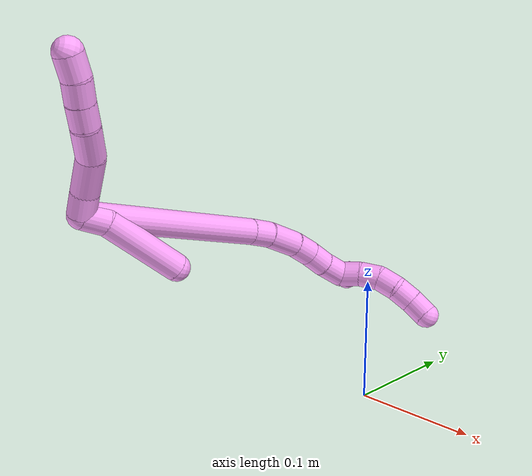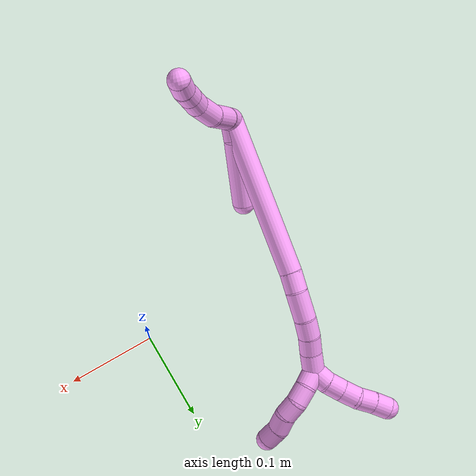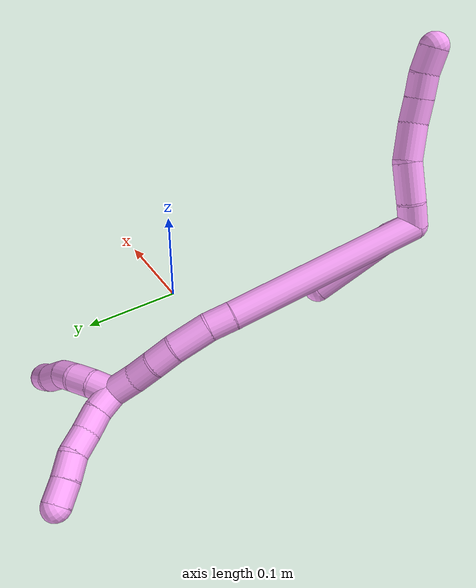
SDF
<sdf version="1.7">
 <world name="default">
  <model name="4">
   <static>0</static>
   <link name="4">
    <collision name="collision-cylinder-e_1_2_8">
     <pose>0.009098 0.004883 0.003103 -1.00473 1.00435 -0.585998</pose>
     <geometry><cylinder><radius>0.0125</radius><length>0.021563</length></cylinder></geometry>
     <surface>
      <friction><ode><mu>1.16</mu><mu2>1.16</mu2><slip1>0</slip1><slip2>0</slip2></ode></friction>
      <contact><ode><kp>1e+06</kp><kd>1</kd><max_vel>0</max_vel><min_depth>0.001</min_depth></ode></contact>
     </surface>
    </collision>
    <visual name="visual-cylinder-e_1_2_8">
     <pose>0.009098 0.004883 0.003103 -1.00473 1.00435 -0.585998</pose>
     <geometry><cylinder><radius>0.0125</radius><length>0.021563</length></cylinder></geometry>
     <material><ambient>1 0.65098 0.996078 1</ambient></material>
    </visual>
    <collision name="collision-cylinder-e_2_8_9">
     <pose>0.033913 0.015163 0.011852 -0.762802 1.10962 -0.48721</pose>
     <geometry><cylinder><radius>0.0125</radius><length>0.035103</length></cylinder></geometry>
     <surface>
      <friction><ode><mu>1.16</mu><mu2>1.16</mu2><slip1>0</slip1><slip2>0</slip2></ode></friction>
      <contact><ode><kp>1e+06</kp><kd>1</kd><max_vel>0</max_vel><min_depth>0.001</min_depth></ode></contact>
     </surface>
    </collision>
    <visual name="visual-cylinder-e_2_8_9">
     <pose>0.033913 0.015163 0.011852 -0.762802 1.10962 -0.48721</pose>
     <geometry><cylinder><radius>0.0125</radius><length>0.035103</length></cylinder></geometry>
     <material><ambient>1 0.65098 0.996078 1</ambient></material>
    </visual>
    <collision name="collision-cylinder-e_3_9_10">
     <pose>0.062209 0.023532 0.026721 -0.311762 0.914369 -0.154318</pose>
     <geometry><cylinder><radius>0.0125</radius><length>0.031755</length></cylinder></geometry>
     <surface>
      <friction><ode><mu>1.16</mu><mu2>1.16</mu2><slip1>0</slip1><slip2>0</slip2></ode></friction>
      <contact><ode><kp>1e+06</kp><kd>1</kd><max_vel>0</max_vel><min_depth>0.001</min_depth></ode></contact>
     </surface>
    </collision>
    <visual name="visual-cylinder-e_3_9_10">
     <pose>0.062209 0.023532 0.026721 -0.311762 0.914369 -0.154318</pose>
     <geometry><cylinder><radius>0.0125</radius><length>0.031755</length></cylinder></geometry>
     <material><ambient>1 0.65098 0.996078 1</ambient></material>
    </visual>
    <collision name="collision-cylinder-e_4_10_11">
     <pose>0.082261 0.030208 0.042042 -0.545771 0.808677 -0.238384</pose>
     <geometry><cylinder><radius>0.0125</radius><length>0.020667</length></cylinder></geometry>
     <surface>
      <friction><ode><mu>1.16</mu><mu2>1.16</mu2><slip1>0</slip1><slip2>0</slip2></ode></friction>
      <contact><ode><kp>1e+06</kp><kd>1</kd><max_vel>0</max_vel><min_depth>0.001</min_depth></ode></contact>
     </surface>
    </collision>
    <visual name="visual-cylinder-e_4_10_11">
     <pose>0.082261 0.030208 0.042042 -0.545771 0.808677 -0.238384</pose>
     <geometry><cylinder><radius>0.0125</radius><length>0.020667</length></cylinder></geometry>
     <material><ambient>1 0.65098 0.996078 1</ambient></material>
    </visual>
    <collision name="collision-cylinder-e_5_11_12">
     <pose>0.097152 0.037783 0.053666 -0.611183 0.832563 -0.277166</pose>
     <geometry><cylinder><radius>0.0125</radius><length>0.020052</length></cylinder></geometry>
     <surface>
      <friction><ode><mu>1.16</mu><mu2>1.16</mu2><slip1>0</slip1><slip2>0</slip2></ode></friction>
      <contact><ode><kp>1e+06</kp><kd>1</kd><max_vel>0</max_vel><min_depth>0.001</min_depth></ode></contact>
     </surface>
    </collision>
    <visual name="visual-cylinder-e_5_11_12">
     <pose>0.097152 0.037783 0.053666 -0.611183 0.832563 -0.277166</pose>
     <geometry><cylinder><radius>0.0125</radius><length>0.020052</length></cylinder></geometry>
     <material><ambient>1 0.65098 0.996078 1</ambient></material>
    </visual>
    <collision name="collision-cylinder-e_6_12_6">
     <pose>0.110994 0.046303 0.065966 -0.601442 0.663837 -0.212974</pose>
     <geometry><cylinder><radius>0.0125</radius><length>0.02086</length></cylinder></geometry>
     <surface>
      <friction><ode><mu>1.16</mu><mu2>1.16</mu2><slip1>0</slip1><slip2>0</slip2></ode></friction>
      <contact><ode><kp>1e+06</kp><kd>1</kd><max_vel>0</max_vel><min_depth>0.001</min_depth></ode></contact>
     </surface>
    </collision>
    <visual name="visual-cylinder-e_6_12_6">
     <pose>0.110994 0.046303 0.065966 -0.601442 0.663837 -0.212974</pose>
     <geometry><cylinder><radius>0.0125</radius><length>0.02086</length></cylinder></geometry>
     <material><ambient>1 0.65098 0.996078 1</ambient></material>
    </visual>
    <collision name="collision-cylinder-e_1_2_13">
     <pose>0.000859 -0.000222 -0.011348 3.12205 0.075494 2.63511</pose>
     <geometry><cylinder><radius>0.0125</radius><length>0.022766</length></cylinder></geometry>
     <surface>
      <friction><ode><mu>1.16</mu><mu2>1.16</mu2><slip1>0</slip1><slip2>0</slip2></ode></friction>
      <contact><ode><kp>1e+06</kp><kd>1</kd><max_vel>0</max_vel><min_depth>0.001</min_depth></ode></contact>
     </surface>
    </collision>
    <visual name="visual-cylinder-e_1_2_13">
     <pose>0.000859 -0.000222 -0.011348 3.12205 0.075494 2.63511</pose>
     <geometry><cylinder><radius>0.0125</radius><length>0.022766</length></cylinder></geometry>
     <material><ambient>1 0.65098 0.996078 1</ambient></material>
    </visual>
    <collision name="collision-cylinder-e_2_13_5">
     <pose>-0.002925 -0.010183 -0.059776 2.88473 -0.120495 -0.873942</pose>
     <geometry><cylinder><radius>0.0125</radius><length>0.077234</length></cylinder></geometry>
     <surface>
      <friction><ode><mu>1.16</mu><mu2>1.16</mu2><slip1>0</slip1><slip2>0</slip2></ode></friction>
      <contact><ode><kp>1e+06</kp><kd>1</kd><max_vel>0</max_vel><min_depth>0.001</min_depth></ode></contact>
     </surface>
    </collision>
    <visual name="visual-cylinder-e_2_13_5">
     <pose>-0.002925 -0.010183 -0.059776 2.88473 -0.120495 -0.873942</pose>
     <geometry><cylinder><radius>0.0125</radius><length>0.077234</length></cylinder></geometry>
     <material><ambient>1 0.65098 0.996078 1</ambient></material>
    </visual>
    <collision name="collision-cylinder-e_1_2_14">
     <pose>0.002812 0.016994 -0.087266 -2.94927 0.031619 -0.324933</pose>
     <geometry><cylinder><radius>0.0125</radius><length>0.1779</length></cylinder></geometry>
     <surface>
      <friction><ode><mu>1.16</mu><mu2>1.16</mu2><slip1>0</slip1><slip2>0</slip2></ode></friction>
      <contact><ode><kp>1e+06</kp><kd>1</kd><max_vel>0</max_vel><min_depth>0.001</min_depth></ode></contact>
     </surface>
    </collision>
    <visual name="visual-cylinder-e_1_2_14">
     <pose>0.002812 0.016994 -0.087266 -2.94927 0.031619 -0.324933</pose>
     <geometry><cylinder><radius>0.0125</radius><length>0.1779</length></cylinder></geometry>
     <material><ambient>1 0.65098 0.996078 1</ambient></material>
    </visual>
    <collision name="collision-cylinder-e_2_14_15">
     <pose>0.00623 0.035231 -0.185383 -3.02747 0.055446 -0.903877</pose>
     <geometry><cylinder><radius>0.0125</radius><length>0.021876</length></cylinder></geometry>
     <surface>
      <friction><ode><mu>1.16</mu><mu2>1.16</mu2><slip1>0</slip1><slip2>0</slip2></ode></friction>
      <contact><ode><kp>1e+06</kp><kd>1</kd><max_vel>0</max_vel><min_depth>0.001</min_depth></ode></contact>
     </surface>
    </collision>
    <visual name="visual-cylinder-e_2_14_15">
     <pose>0.00623 0.035231 -0.185383 -3.02747 0.055446 -0.903877</pose>
     <geometry><cylinder><radius>0.0125</radius><length>0.021876</length></cylinder></geometry>
     <material><ambient>1 0.65098 0.996078 1</ambient></material>
    </visual>
    <collision name="collision-cylinder-e_3_15_16">
     <pose>0.005706 0.03659 -0.212876 -3.13467 -0.067792 2.93802</pose>
     <geometry><cylinder><radius>0.0125</radius><length>0.033363</length></cylinder></geometry>
     <surface>
      <friction><ode><mu>1.16</mu><mu2>1.16</mu2><slip1>0</slip1><slip2>0</slip2></ode></friction>
      <contact><ode><kp>1e+06</kp><kd>1</kd><max_vel>0</max_vel><min_depth>0.001</min_depth></ode></contact>
     </surface>
    </collision>
    <visual name="visual-cylinder-e_3_15_16">
     <pose>0.005706 0.03659 -0.212876 -3.13467 -0.067792 2.93802</pose>
     <geometry><cylinder><radius>0.0125</radius><length>0.033363</length></cylinder></geometry>
     <material><ambient>1 0.65098 0.996078 1</ambient></material>
    </visual>
    <collision name="collision-cylinder-e_4_16_17">
     <pose>0.003088 0.035291 -0.24022 3.0102 -0.13699 -1.61265</pose>
     <geometry><cylinder><radius>0.0125</radius><length>0.021793</length></cylinder></geometry>
     <surface>
      <friction><ode><mu>1.16</mu><mu2>1.16</mu2><slip1>0</slip1><slip2>0</slip2></ode></friction>
      <contact><ode><kp>1e+06</kp><kd>1</kd><max_vel>0</max_vel><min_depth>0.001</min_depth></ode></contact>
     </surface>
    </collision>
    <visual name="visual-cylinder-e_4_16_17">
     <pose>0.003088 0.035291 -0.24022 3.0102 -0.13699 -1.61265</pose>
     <geometry><cylinder><radius>0.0125</radius><length>0.021793</length></cylinder></geometry>
     <material><ambient>1 0.65098 0.996078 1</ambient></material>
    </visual>
    <collision name="collision-cylinder-e_5_17_18">
     <pose>0.00036 0.031027 -0.260908 2.86363 -0.118843 -0.804244</pose>
     <geometry><cylinder><radius>0.0125</radius><length>0.020918</length></cylinder></geometry>
     <surface>
      <friction><ode><mu>1.16</mu><mu2>1.16</mu2><slip1>0</slip1><slip2>0</slip2></ode></friction>
      <contact><ode><kp>1e+06</kp><kd>1</kd><max_vel>0</max_vel><min_depth>0.001</min_depth></ode></contact>
     </surface>
    </collision>
    <visual name="visual-cylinder-e_5_17_18">
     <pose>0.00036 0.031027 -0.260908 2.86363 -0.118843 -0.804244</pose>
     <geometry><cylinder><radius>0.0125</radius><length>0.020918</length></cylinder></geometry>
     <material><ambient>1 0.65098 0.996078 1</ambient></material>
    </visual>
    <collision name="collision-cylinder-e_6_18_1">
     <pose>-0.001681 0.025952 -0.282736 2.9558 -0.066416 -0.685041</pose>
     <geometry><cylinder><radius>0.0125</radius><length>0.02415</length></cylinder></geometry>
     <surface>
      <friction><ode><mu>1.16</mu><mu2>1.16</mu2><slip1>0</slip1><slip2>0</slip2></ode></friction>
      <contact><ode><kp>1e+06</kp><kd>1</kd><max_vel>0</max_vel><min_depth>0.001</min_depth></ode></contact>
     </surface>
    </collision>
    <visual name="visual-cylinder-e_6_18_1">
     <pose>-0.001681 0.025952 -0.282736 2.9558 -0.066416 -0.685041</pose>
     <geometry><cylinder><radius>0.0125</radius><length>0.02415</length></cylinder></geometry>
     <material><ambient>1 0.65098 0.996078 1</ambient></material>
    </visual>
    <collision name="collision-cylinder-e_1_1_19">
     <pose>-0.006276 0.02782 -0.302874 -2.68322 -0.38912 1.40281</pose>
     <geometry><cylinder><radius>0.0125</radius><length>0.02</length></cylinder></geometry>
     <surface>
      <friction><ode><mu>1.16</mu><mu2>1.16</mu2><slip1>0</slip1><slip2>0</slip2></ode></friction>
      <contact><ode><kp>1e+06</kp><kd>1</kd><max_vel>0</max_vel><min_depth>0.001</min_depth></ode></contact>
     </surface>
    </collision>
    <visual name="visual-cylinder-e_1_1_19">
     <pose>-0.006276 0.02782 -0.302874 -2.68322 -0.38912 1.40281</pose>
     <geometry><cylinder><radius>0.0125</radius><length>0.02</length></cylinder></geometry>
     <material><ambient>1 0.65098 0.996078 1</ambient></material>
    </visual>
    <collision name="collision-cylinder-e_2_19_20">
     <pose>-0.015627 0.036272 -0.318251 -2.58989 -0.589235 1.64026</pose>
     <geometry><cylinder><radius>0.0125</radius><length>0.02</length></cylinder></geometry>
     <surface>
      <friction><ode><mu>1.16</mu><mu2>1.16</mu2><slip1>0</slip1><slip2>0</slip2></ode></friction>
      <contact><ode><kp>1e+06</kp><kd>1</kd><max_vel>0</max_vel><min_depth>0.001</min_depth></ode></contact>
     </surface>
    </collision>
    <visual name="visual-cylinder-e_2_19_20">
     <pose>-0.015627 0.036272 -0.318251 -2.58989 -0.589235 1.64026</pose>
     <geometry><cylinder><radius>0.0125</radius><length>0.02</length></cylinder></geometry>
     <material><ambient>1 0.65098 0.996078 1</ambient></material>
    </visual>
    <collision name="collision-cylinder-e_3_20_21">
     <pose>-0.026115 0.04627 -0.331955 -2.43616 -0.515626 1.24318</pose>
     <geometry><cylinder><radius>0.0125</radius><length>0.02</length></cylinder></geometry>
     <surface>
      <friction><ode><mu>1.16</mu><mu2>1.16</mu2><slip1>0</slip1><slip2>0</slip2></ode></friction>
      <contact><ode><kp>1e+06</kp><kd>1</kd><max_vel>0</max_vel><min_depth>0.001</min_depth></ode></contact>
     </surface>
    </collision>
    <visual name="visual-cylinder-e_3_20_21">
     <pose>-0.026115 0.04627 -0.331955 -2.43616 -0.515626 1.24318</pose>
     <geometry><cylinder><radius>0.0125</radius><length>0.02</length></cylinder></geometry>
     <material><ambient>1 0.65098 0.996078 1</ambient></material>
    </visual>
    <collision name="collision-cylinder-e_4_21_22">
     <pose>-0.038324 0.055842 -0.344197 -2.53104 -0.815103 1.88053</pose>
     <geometry><cylinder><radius>0.0125</radius><length>0.02</length></cylinder></geometry>
     <surface>
      <friction><ode><mu>1.16</mu><mu2>1.16</mu2><slip1>0</slip1><slip2>0</slip2></ode></friction>
      <contact><ode><kp>1e+06</kp><kd>1</kd><max_vel>0</max_vel><min_depth>0.001</min_depth></ode></contact>
     </surface>
    </collision>
    <visual name="visual-cylinder-e_4_21_22">
     <pose>-0.038324 0.055842 -0.344197 -2.53104 -0.815103 1.88053</pose>
     <geometry><cylinder><radius>0.0125</radius><length>0.02</length></cylinder></geometry>
     <material><ambient>1 0.65098 0.996078 1</ambient></material>
    </visual>
    <collision name="collision-cylinder-e_5_22_4">
     <pose>-0.052345 0.063685 -0.35608 -2.58344 -0.740045 1.86906</pose>
     <geometry><cylinder><radius>0.0125</radius><length>0.02</length></cylinder></geometry>
     <surface>
      <friction><ode><mu>1.16</mu><mu2>1.16</mu2><slip1>0</slip1><slip2>0</slip2></ode></friction>
      <contact><ode><kp>1e+06</kp><kd>1</kd><max_vel>0</max_vel><min_depth>0.001</min_depth></ode></contact>
     </surface>
    </collision>
    <visual name="visual-cylinder-e_5_22_4">
     <pose>-0.052345 0.063685 -0.35608 -2.58344 -0.740045 1.86906</pose>
     <geometry><cylinder><radius>0.0125</radius><length>0.02</length></cylinder></geometry>
     <material><ambient>1 0.65098 0.996078 1</ambient></material>
    </visual>
    <collision name="collision-cylinder-e_1_1_23">
     <pose>0.004749 0.021565 -0.301137 2.82333 0.808317 2.42365</pose>
     <geometry><cylinder><radius>0.0125</radius><length>0.02</length></cylinder></geometry>
     <surface>
      <friction><ode><mu>1.16</mu><mu2>1.16</mu2><slip1>0</slip1><slip2>0</slip2></ode></friction>
      <contact><ode><kp>1e+06</kp><kd>1</kd><max_vel>0</max_vel><min_depth>0.001</min_depth></ode></contact>
     </surface>
    </collision>
    <visual name="visual-cylinder-e_1_1_23">
     <pose>0.004749 0.021565 -0.301137 2.82333 0.808317 2.42365</pose>
     <geometry><cylinder><radius>0.0125</radius><length>0.02</length></cylinder></geometry>
     <material><ambient>1 0.65098 0.996078 1</ambient></material>
    </visual>
    <collision name="collision-cylinder-e_2_23_24">
     <pose>0.018178 0.015541 -0.314529 2.62707 0.668444 1.84485</pose>
     <geometry><cylinder><radius>0.0125</radius><length>0.02</length></cylinder></geometry>
     <surface>
      <friction><ode><mu>1.16</mu><mu2>1.16</mu2><slip1>0</slip1><slip2>0</slip2></ode></friction>
      <contact><ode><kp>1e+06</kp><kd>1</kd><max_vel>0</max_vel><min_depth>0.001</min_depth></ode></contact>
     </surface>
    </collision>
    <visual name="visual-cylinder-e_2_23_24">
     <pose>0.018178 0.015541 -0.314529 2.62707 0.668444 1.84485</pose>
     <geometry><cylinder><radius>0.0125</radius><length>0.02</length></cylinder></geometry>
     <material><ambient>1 0.65098 0.996078 1</ambient></material>
    </visual>
    <collision name="collision-cylinder-e_3_24_25">
     <pose>0.028713 0.00505 -0.327463 2.31488 0.448707 0.95943</pose>
     <geometry><cylinder><radius>0.0125</radius><length>0.02</length></cylinder></geometry>
     <surface>
      <friction><ode><mu>1.16</mu><mu2>1.16</mu2><slip1>0</slip1><slip2>0</slip2></ode></friction>
      <contact><ode><kp>1e+06</kp><kd>1</kd><max_vel>0</max_vel><min_depth>0.001</min_depth></ode></contact>
     </surface>
    </collision>
    <visual name="visual-cylinder-e_3_24_25">
     <pose>0.028713 0.00505 -0.327463 2.31488 0.448707 0.95943</pose>
     <geometry><cylinder><radius>0.0125</radius><length>0.02</length></cylinder></geometry>
     <material><ambient>1 0.65098 0.996078 1</ambient></material>
    </visual>
    <collision name="collision-cylinder-e_4_25_26">
     <pose>0.034693 -0.00775 -0.341261 2.46561 0.164916 0.461886</pose>
     <geometry><cylinder><radius>0.0125</radius><length>0.02</length></cylinder></geometry>
     <surface>
      <friction><ode><mu>1.16</mu><mu2>1.16</mu2><slip1>0</slip1><slip2>0</slip2></ode></friction>
      <contact><ode><kp>1e+06</kp><kd>1</kd><max_vel>0</max_vel><min_depth>0.001</min_depth></ode></contact>
     </surface>
    </collision>
    <visual name="visual-cylinder-e_4_25_26">
     <pose>0.034693 -0.00775 -0.341261 2.46561 0.164916 0.461886</pose>
     <geometry><cylinder><radius>0.0125</radius><length>0.02</length></cylinder></geometry>
     <material><ambient>1 0.65098 0.996078 1</ambient></material>
    </visual>
    <collision name="collision-cylinder-e_5_26_3">
     <pose>0.03881 -0.021919 -0.354426 2.17066 0.250107 0.467829</pose>
     <geometry><cylinder><radius>0.0125</radius><length>0.02</length></cylinder></geometry>
     <surface>
      <friction><ode><mu>1.16</mu><mu2>1.16</mu2><slip1>0</slip1><slip2>0</slip2></ode></friction>
      <contact><ode><kp>1e+06</kp><kd>1</kd><max_vel>0</max_vel><min_depth>0.001</min_depth></ode></contact>
     </surface>
    </collision>
    <visual name="visual-cylinder-e_5_26_3">
     <pose>0.03881 -0.021919 -0.354426 2.17066 0.250107 0.467829</pose>
     <geometry><cylinder><radius>0.0125</radius><length>0.02</length></cylinder></geometry>
     <material><ambient>1 0.65098 0.996078 1</ambient></material>
    </visual>
    <collision name="collision-sphere-3">
     <pose>0.041285 -0.029916 -0.359895 0 -0 0</pose>
     <geometry><sphere><radius>0.0125</radius></sphere></geometry>
     <surface>
      <friction><ode><mu>1.16</mu><mu2>1.16</mu2><slip1>0</slip1><slip2>0</slip2></ode></friction>
      <contact><ode><kp>1e+06</kp><kd>1</kd><max_vel>0</max_vel><min_depth>0.001</min_depth></ode></contact>
     </surface>
    </collision>
    <visual name="visual-sphere-3">
     <pose>0.041285 -0.029916 -0.359895 0 -0 0</pose>
     <geometry><sphere><radius>0.0125</radius></sphere></geometry>
     <material><ambient>1 0.65098 0.996078 1</ambient></material>
    </visual>
    <collision name="collision-sphere-26">
     <pose>0.036335 -0.013922 -0.348956 0 -0 0</pose>
     <geometry><sphere><radius>0.0125</radius></sphere></geometry>
     <surface>
      <friction><ode><mu>1.16</mu><mu2>1.16</mu2><slip1>0</slip1><slip2>0</slip2></ode></friction>
      <contact><ode><kp>1e+06</kp><kd>1</kd><max_vel>0</max_vel><min_depth>0.001</min_depth></ode></contact>
     </surface>
    </collision>
    <visual name="visual-sphere-26">
     <pose>0.036335 -0.013922 -0.348956 0 -0 0</pose>
     <geometry><sphere><radius>0.0125</radius></sphere></geometry>
     <material><ambient>1 0.65098 0.996078 1</ambient></material>
    </visual>
    <collision name="collision-sphere-25">
     <pose>0.033051 -0.001578 -0.333566 0 -0 0</pose>
     <geometry><sphere><radius>0.0125</radius></sphere></geometry>
     <surface>
      <friction><ode><mu>1.16</mu><mu2>1.16</mu2><slip1>0</slip1><slip2>0</slip2></ode></friction>
      <contact><ode><kp>1e+06</kp><kd>1</kd><max_vel>0</max_vel><min_depth>0.001</min_depth></ode></contact>
     </surface>
    </collision>
    <visual name="visual-sphere-25">
     <pose>0.033051 -0.001578 -0.333566 0 -0 0</pose>
     <geometry><sphere><radius>0.0125</radius></sphere></geometry>
     <material><ambient>1 0.65098 0.996078 1</ambient></material>
    </visual>
    <collision name="collision-sphere-24">
     <pose>0.024375 0.011679 -0.321361 0 -0 0</pose>
     <geometry><sphere><radius>0.0125</radius></sphere></geometry>
     <surface>
      <friction><ode><mu>1.16</mu><mu2>1.16</mu2><slip1>0</slip1><slip2>0</slip2></ode></friction>
      <contact><ode><kp>1e+06</kp><kd>1</kd><max_vel>0</max_vel><min_depth>0.001</min_depth></ode></contact>
     </surface>
    </collision>
    <visual name="visual-sphere-24">
     <pose>0.024375 0.011679 -0.321361 0 -0 0</pose>
     <geometry><sphere><radius>0.0125</radius></sphere></geometry>
     <material><ambient>1 0.65098 0.996078 1</ambient></material>
    </visual>
    <collision name="collision-sphere-23">
     <pose>0.01198 0.019403 -0.307697 0 -0 0</pose>
     <geometry><sphere><radius>0.0125</radius></sphere></geometry>
     <surface>
      <friction><ode><mu>1.16</mu><mu2>1.16</mu2><slip1>0</slip1><slip2>0</slip2></ode></friction>
      <contact><ode><kp>1e+06</kp><kd>1</kd><max_vel>0</max_vel><min_depth>0.001</min_depth></ode></contact>
     </surface>
    </collision>
    <visual name="visual-sphere-23">
     <pose>0.01198 0.019403 -0.307697 0 -0 0</pose>
     <geometry><sphere><radius>0.0125</radius></sphere></geometry>
     <material><ambient>1 0.65098 0.996078 1</ambient></material>
    </visual>
    <collision name="collision-sphere-4">
     <pose>-0.059089 0.067596 -0.362344 0 -0 0</pose>
     <geometry><sphere><radius>0.0125</radius></sphere></geometry>
     <surface>
      <friction><ode><mu>1.16</mu><mu2>1.16</mu2><slip1>0</slip1><slip2>0</slip2></ode></friction>
      <contact><ode><kp>1e+06</kp><kd>1</kd><max_vel>0</max_vel><min_depth>0.001</min_depth></ode></contact>
     </surface>
    </collision>
    <visual name="visual-sphere-4">
     <pose>-0.059089 0.067596 -0.362344 0 -0 0</pose>
     <geometry><sphere><radius>0.0125</radius></sphere></geometry>
     <material><ambient>1 0.65098 0.996078 1</ambient></material>
    </visual>
    <collision name="collision-sphere-22">
     <pose>-0.045602 0.059774 -0.349816 0 -0 0</pose>
     <geometry><sphere><radius>0.0125</radius></sphere></geometry>
     <surface>
      <friction><ode><mu>1.16</mu><mu2>1.16</mu2><slip1>0</slip1><slip2>0</slip2></ode></friction>
      <contact><ode><kp>1e+06</kp><kd>1</kd><max_vel>0</max_vel><min_depth>0.001</min_depth></ode></contact>
     </surface>
    </collision>
    <visual name="visual-sphere-22">
     <pose>-0.045602 0.059774 -0.349816 0 -0 0</pose>
     <geometry><sphere><radius>0.0125</radius></sphere></geometry>
     <material><ambient>1 0.65098 0.996078 1</ambient></material>
    </visual>
    <collision name="collision-sphere-21">
     <pose>-0.031046 0.051911 -0.338579 0 -0 0</pose>
     <geometry><sphere><radius>0.0125</radius></sphere></geometry>
     <surface>
      <friction><ode><mu>1.16</mu><mu2>1.16</mu2><slip1>0</slip1><slip2>0</slip2></ode></friction>
      <contact><ode><kp>1e+06</kp><kd>1</kd><max_vel>0</max_vel><min_depth>0.001</min_depth></ode></contact>
     </surface>
    </collision>
    <visual name="visual-sphere-21">
     <pose>-0.031046 0.051911 -0.338579 0 -0 0</pose>
     <geometry><sphere><radius>0.0125</radius></sphere></geometry>
     <material><ambient>1 0.65098 0.996078 1</ambient></material>
    </visual>
    <collision name="collision-sphere-20">
     <pose>-0.021185 0.040629 -0.325332 0 -0 0</pose>
     <geometry><sphere><radius>0.0125</radius></sphere></geometry>
     <surface>
      <friction><ode><mu>1.16</mu><mu2>1.16</mu2><slip1>0</slip1><slip2>0</slip2></ode></friction>
      <contact><ode><kp>1e+06</kp><kd>1</kd><max_vel>0</max_vel><min_depth>0.001</min_depth></ode></contact>
     </surface>
    </collision>
    <visual name="visual-sphere-20">
     <pose>-0.021185 0.040629 -0.325332 0 -0 0</pose>
     <geometry><sphere><radius>0.0125</radius></sphere></geometry>
     <material><ambient>1 0.65098 0.996078 1</ambient></material>
    </visual>
    <collision name="collision-sphere-12">
     <pose>0.104568 0.041655 0.059192 0 -0 0</pose>
     <geometry><sphere><radius>0.0125</radius></sphere></geometry>
     <surface>
      <friction><ode><mu>1.16</mu><mu2>1.16</mu2><slip1>0</slip1><slip2>0</slip2></ode></friction>
      <contact><ode><kp>1e+06</kp><kd>1</kd><max_vel>0</max_vel><min_depth>0.001</min_depth></ode></contact>
     </surface>
    </collision>
    <visual name="visual-sphere-12">
     <pose>0.104568 0.041655 0.059192 0 -0 0</pose>
     <geometry><sphere><radius>0.0125</radius></sphere></geometry>
     <material><ambient>1 0.65098 0.996078 1</ambient></material>
    </visual>
    <collision name="collision-sphere-11">
     <pose>0.089737 0.033911 0.04814 0 -0 0</pose>
     <geometry><sphere><radius>0.0125</radius></sphere></geometry>
     <surface>
      <friction><ode><mu>1.16</mu><mu2>1.16</mu2><slip1>0</slip1><slip2>0</slip2></ode></friction>
      <contact><ode><kp>1e+06</kp><kd>1</kd><max_vel>0</max_vel><min_depth>0.001</min_depth></ode></contact>
     </surface>
    </collision>
    <visual name="visual-sphere-11">
     <pose>0.089737 0.033911 0.04814 0 -0 0</pose>
     <geometry><sphere><radius>0.0125</radius></sphere></geometry>
     <material><ambient>1 0.65098 0.996078 1</ambient></material>
    </visual>
    <collision name="collision-sphere-10">
     <pose>0.074786 0.026504 0.035944 0 -0 0</pose>
     <geometry><sphere><radius>0.0125</radius></sphere></geometry>
     <surface>
      <friction><ode><mu>1.16</mu><mu2>1.16</mu2><slip1>0</slip1><slip2>0</slip2></ode></friction>
      <contact><ode><kp>1e+06</kp><kd>1</kd><max_vel>0</max_vel><min_depth>0.001</min_depth></ode></contact>
     </surface>
    </collision>
    <visual name="visual-sphere-10">
     <pose>0.074786 0.026504 0.035944 0 -0 0</pose>
     <geometry><sphere><radius>0.0125</radius></sphere></geometry>
     <material><ambient>1 0.65098 0.996078 1</ambient></material>
    </visual>
    <collision name="collision-sphere-9">
     <pose>0.049631 0.02056 0.017498 0 -0 0</pose>
     <geometry><sphere><radius>0.0125</radius></sphere></geometry>
     <surface>
      <friction><ode><mu>1.16</mu><mu2>1.16</mu2><slip1>0</slip1><slip2>0</slip2></ode></friction>
      <contact><ode><kp>1e+06</kp><kd>1</kd><max_vel>0</max_vel><min_depth>0.001</min_depth></ode></contact>
     </surface>
    </collision>
    <visual name="visual-sphere-9">
     <pose>0.049631 0.02056 0.017498 0 -0 0</pose>
     <geometry><sphere><radius>0.0125</radius></sphere></geometry>
     <material><ambient>1 0.65098 0.996078 1</ambient></material>
    </visual>
    <collision name="collision-sphere-2">
     <geometry><sphere><radius>0.0125</radius></sphere></geometry>
     <surface>
      <friction><ode><mu>1.16</mu><mu2>1.16</mu2><slip1>0</slip1><slip2>0</slip2></ode></friction>
      <contact><ode><kp>1e+06</kp><kd>1</kd><max_vel>0</max_vel><min_depth>0.001</min_depth></ode></contact>
     </surface>
    </collision>
    <visual name="visual-sphere-2">
     <geometry><sphere><radius>0.0125</radius></sphere></geometry>
     <material><ambient>1 0.65098 0.996078 1</ambient></material>
    </visual>
    <collision name="collision-sphere-19">
     <pose>-0.01007 0.031914 -0.311171 0 -0 0</pose>
     <geometry><sphere><radius>0.0125</radius></sphere></geometry>
     <surface>
      <friction><ode><mu>1.16</mu><mu2>1.16</mu2><slip1>0</slip1><slip2>0</slip2></ode></friction>
      <contact><ode><kp>1e+06</kp><kd>1</kd><max_vel>0</max_vel><min_depth>0.001</min_depth></ode></contact>
     </surface>
    </collision>
    <visual name="visual-sphere-19">
     <pose>-0.01007 0.031914 -0.311171 0 -0 0</pose>
     <geometry><sphere><radius>0.0125</radius></sphere></geometry>
     <material><ambient>1 0.65098 0.996078 1</ambient></material>
    </visual>
    <collision name="collision-sphere-8">
     <pose>0.018195 0.009767 0.006206 0 -0 0</pose>
     <geometry><sphere><radius>0.0125</radius></sphere></geometry>
     <surface>
      <friction><ode><mu>1.16</mu><mu2>1.16</mu2><slip1>0</slip1><slip2>0</slip2></ode></friction>
      <contact><ode><kp>1e+06</kp><kd>1</kd><max_vel>0</max_vel><min_depth>0.001</min_depth></ode></contact>
     </surface>
    </collision>
    <visual name="visual-sphere-8">
     <pose>0.018195 0.009767 0.006206 0 -0 0</pose>
     <geometry><sphere><radius>0.0125</radius></sphere></geometry>
     <material><ambient>1 0.65098 0.996078 1</ambient></material>
    </visual>
    <collision name="collision-sphere-6">
     <pose>0.117421 0.050952 0.072739 0 -0 0</pose>
     <geometry><sphere><radius>0.0125</radius></sphere></geometry>
     <surface>
      <friction><ode><mu>1.16</mu><mu2>1.16</mu2><slip1>0</slip1><slip2>0</slip2></ode></friction>
      <contact><ode><kp>1e+06</kp><kd>1</kd><max_vel>0</max_vel><min_depth>0.001</min_depth></ode></contact>
     </surface>
    </collision>
    <visual name="visual-sphere-6">
     <pose>0.117421 0.050952 0.072739 0 -0 0</pose>
     <geometry><sphere><radius>0.0125</radius></sphere></geometry>
     <material><ambient>1 0.65098 0.996078 1</ambient></material>
    </visual>
    <collision name="collision-sphere-13">
     <pose>0.001717 -0.000444 -0.022696 0 -0 0</pose>
     <geometry><sphere><radius>0.0125</radius></sphere></geometry>
     <surface>
      <friction><ode><mu>1.16</mu><mu2>1.16</mu2><slip1>0</slip1><slip2>0</slip2></ode></friction>
      <contact><ode><kp>1e+06</kp><kd>1</kd><max_vel>0</max_vel><min_depth>0.001</min_depth></ode></contact>
     </surface>
    </collision>
    <visual name="visual-sphere-13">
     <pose>0.001717 -0.000444 -0.022696 0 -0 0</pose>
     <geometry><sphere><radius>0.0125</radius></sphere></geometry>
     <material><ambient>1 0.65098 0.996078 1</ambient></material>
    </visual>
    <collision name="collision-sphere-5">
     <pose>-0.007567 -0.019923 -0.096855 0 -0 0</pose>
     <geometry><sphere><radius>0.0125</radius></sphere></geometry>
     <surface>
      <friction><ode><mu>1.16</mu><mu2>1.16</mu2><slip1>0</slip1><slip2>0</slip2></ode></friction>
      <contact><ode><kp>1e+06</kp><kd>1</kd><max_vel>0</max_vel><min_depth>0.001</min_depth></ode></contact>
     </surface>
    </collision>
    <visual name="visual-sphere-5">
     <pose>-0.007567 -0.019923 -0.096855 0 -0 0</pose>
     <geometry><sphere><radius>0.0125</radius></sphere></geometry>
     <material><ambient>1 0.65098 0.996078 1</ambient></material>
    </visual>
    <collision name="collision-sphere-14">
     <pose>0.005624 0.033987 -0.174533 0 -0 0</pose>
     <geometry><sphere><radius>0.0125</radius></sphere></geometry>
     <surface>
      <friction><ode><mu>1.16</mu><mu2>1.16</mu2><slip1>0</slip1><slip2>0</slip2></ode></friction>
      <contact><ode><kp>1e+06</kp><kd>1</kd><max_vel>0</max_vel><min_depth>0.001</min_depth></ode></contact>
     </surface>
    </collision>
    <visual name="visual-sphere-14">
     <pose>0.005624 0.033987 -0.174533 0 -0 0</pose>
     <geometry><sphere><radius>0.0125</radius></sphere></geometry>
     <material><ambient>1 0.65098 0.996078 1</ambient></material>
    </visual>
    <collision name="collision-sphere-15">
     <pose>0.006836 0.036474 -0.196233 0 -0 0</pose>
     <geometry><sphere><radius>0.0125</radius></sphere></geometry>
     <surface>
      <friction><ode><mu>1.16</mu><mu2>1.16</mu2><slip1>0</slip1><slip2>0</slip2></ode></friction>
      <contact><ode><kp>1e+06</kp><kd>1</kd><max_vel>0</max_vel><min_depth>0.001</min_depth></ode></contact>
     </surface>
    </collision>
    <visual name="visual-sphere-15">
     <pose>0.006836 0.036474 -0.196233 0 -0 0</pose>
     <geometry><sphere><radius>0.0125</radius></sphere></geometry>
     <material><ambient>1 0.65098 0.996078 1</ambient></material>
    </visual>
    <collision name="collision-sphere-16">
     <pose>0.004576 0.036705 -0.229519 0 -0 0</pose>
     <geometry><sphere><radius>0.0125</radius></sphere></geometry>
     <surface>
      <friction><ode><mu>1.16</mu><mu2>1.16</mu2><slip1>0</slip1><slip2>0</slip2></ode></friction>
      <contact><ode><kp>1e+06</kp><kd>1</kd><max_vel>0</max_vel><min_depth>0.001</min_depth></ode></contact>
     </surface>
    </collision>
    <visual name="visual-sphere-16">
     <pose>0.004576 0.036705 -0.229519 0 -0 0</pose>
     <geometry><sphere><radius>0.0125</radius></sphere></geometry>
     <material><ambient>1 0.65098 0.996078 1</ambient></material>
    </visual>
    <collision name="collision-sphere-17">
     <pose>0.0016 0.033877 -0.250922 0 -0 0</pose>
     <geometry><sphere><radius>0.0125</radius></sphere></geometry>
     <surface>
      <friction><ode><mu>1.16</mu><mu2>1.16</mu2><slip1>0</slip1><slip2>0</slip2></ode></friction>
      <contact><ode><kp>1e+06</kp><kd>1</kd><max_vel>0</max_vel><min_depth>0.001</min_depth></ode></contact>
     </surface>
    </collision>
    <visual name="visual-sphere-17">
     <pose>0.0016 0.033877 -0.250922 0 -0 0</pose>
     <geometry><sphere><radius>0.0125</radius></sphere></geometry>
     <material><ambient>1 0.65098 0.996078 1</ambient></material>
    </visual>
    <collision name="collision-sphere-18">
     <pose>-0.00088 0.028177 -0.270895 0 -0 0</pose>
     <geometry><sphere><radius>0.0125</radius></sphere></geometry>
     <surface>
      <friction><ode><mu>1.16</mu><mu2>1.16</mu2><slip1>0</slip1><slip2>0</slip2></ode></friction>
      <contact><ode><kp>1e+06</kp><kd>1</kd><max_vel>0</max_vel><min_depth>0.001</min_depth></ode></contact>
     </surface>
    </collision>
    <visual name="visual-sphere-18">
     <pose>-0.00088 0.028177 -0.270895 0 -0 0</pose>
     <geometry><sphere><radius>0.0125</radius></sphere></geometry>
     <material><ambient>1 0.65098 0.996078 1</ambient></material>
    </visual>
    <collision name="collision-sphere-1">
     <pose>-0.002483 0.023726 -0.294577 0 -0 0</pose>
     <geometry><sphere><radius>0.0125</radius></sphere></geometry>
     <surface>
      <friction><ode><mu>1.16</mu><mu2>1.16</mu2><slip1>0</slip1><slip2>0</slip2></ode></friction>
      <contact><ode><kp>1e+06</kp><kd>1</kd><max_vel>0</max_vel><min_depth>0.001</min_depth></ode></contact>
     </surface>
    </collision>
    <visual name="visual-sphere-1">
     <pose>-0.002483 0.023726 -0.294577 0 -0 0</pose>
     <geometry><sphere><radius>0.0125</radius></sphere></geometry>
     <material><ambient>1 0.65098 0.996078 1</ambient></material>
    </visual>
    <inertial>
     <pose>0.012946 0.019797 -0.147026 0 -0 0</pose>
     <mass>0.75</mass>
     <inertia>
      <ixx>0.000313</ixx>
      <ixy>0</ixy>
      <ixz>0</ixz>
      <iyy>-0.000624</iyy>
      <iyz>0</iyz>
      <izz>-0.00014</izz>
     </inertia>
    </inertial>
   </link>
   <pose>-0.190012 -0.142884 0.147707 1.03452 -0.688183 0.106575</pose>
  </model>
 </world>
</sdf>
